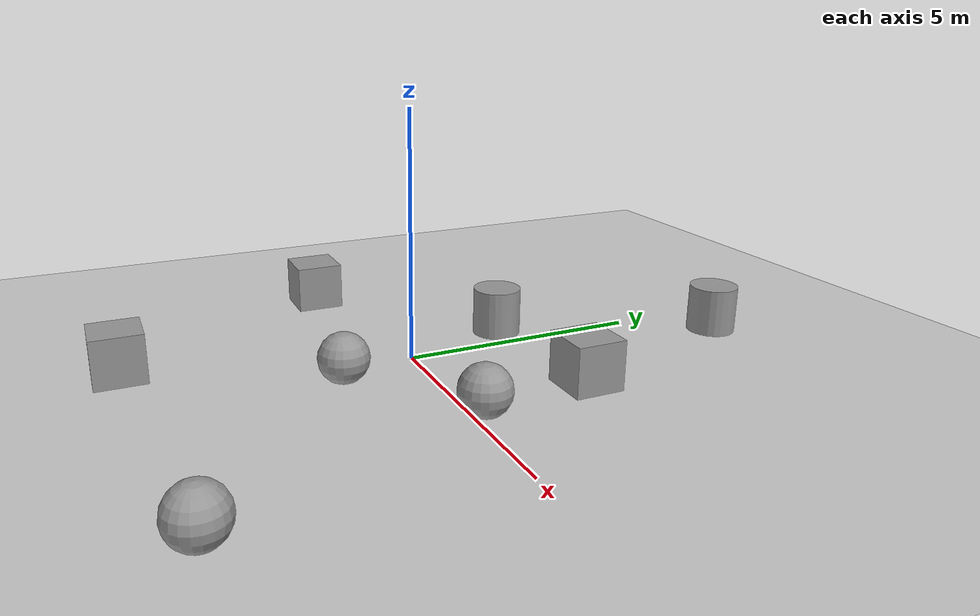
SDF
<sdf version="1.7">
 <world name="default">
  <light name="sun" type="directional">
   <pose>0 0 10 0 -0 0</pose>
   <diffuse>0.8 0.8 0.8 1</diffuse>
   <specular>0.2 0.2 0.2 1</specular>
   <attenuation>
    <range>1000</range>
    <constant>0.9</constant>
    <linear>0.01</linear>
    <quadratic>0.001</quadratic>
   </attenuation>
   <direction>-0.5 0.1 -0.9</direction>
   <spot><inner_angle>0</inner_angle><outer_angle>0</outer_angle><falloff>0</falloff></spot>
  </light>
  <model name="ground_plane">
   <static>1</static>
   <link name="link">
    <collision name="collision">
     <geometry><plane><normal>0 0 1</normal><size>100 100</size></plane></geometry>
     <surface>
      <contact><collide_bitmask>65535</collide_bitmask></contact>
      <friction><ode><mu>100</mu><mu2>50</mu2></ode></friction>
     </surface>
    </collision>
    <visual name="visual">
     <cast_shadows>0</cast_shadows>
     <geometry><plane><normal>0 0 1</normal><size>100 100</size></plane></geometry>
     <material>
      <script><uri>file://media/materials/scripts/gazebo.material</uri><name>Gazebo/Grey</name></script>
     </material>
    </visual>
   </link>
  </model>
  <gravity>0 0 -9.8</gravity>
  <magnetic_field>6e-06 2.3e-05 -4.2e-05</magnetic_field>
  <atmosphere type="adiabatic"/>
  <physics type="ode">
   <max_step_size>0.001</max_step_size>
   <real_time_factor>1</real_time_factor>
   <real_time_update_rate>1000</real_time_update_rate>
  </physics>
  <scene><ambient>0.4 0.4 0.4 1</ambient><background>0.7 0.7 0.7 1</background><shadows>1</shadows></scene>
  <audio><device>default</device></audio>
  <spherical_coordinates>
   <surface_model>EARTH_WGS84</surface_model>
   <latitude_deg>0</latitude_deg>
   <longitude_deg>0</longitude_deg>
   <elevation>0</elevation>
   <heading_deg>0</heading_deg>
  </spherical_coordinates>
  <model name="unit_box">
   <pose>2.47993 2.51124 0.5 -0 -0 -0</pose>
   <link name="link">
    <inertial>
     <mass>1</mass>
     <inertia>
      <ixx>0.166667</ixx>
      <ixy>0</ixy>
      <ixz>0</ixz>
      <iyy>0.166667</iyy>
      <iyz>0</iyz>
      <izz>0.166667</izz>
     </inertia>
    </inertial>
    <collision name="collision"><geometry><box><size>1 1 1</size></box></geometry></collision>
    <visual name="visual">
     <geometry><box><size>1 1 1</size></box></geometry>
     <material>
      <script><name>Gazebo/Grey</name><uri>file://media/materials/scripts/gazebo.material</uri></script>
     </material>
    </visual>
   </link>
  </model>
  <model name="unit_sphere">
   <pose>0.573032 -1.59746 0.5 0 -0 0</pose>
   <link name="link">
    <inertial>
     <sdf version="1.7">
      <world name="default">
       <light name="sun" type="directional">
        <pose>0 0 10 0 -0 0</pose>
        <diffuse>0.8 0.8 0.8 1</diffuse>
        <specular>0.2 0.2 0.2 1</specular>
        <attenuation>
         <range>1000</range>
         <constant>0.9</constant>
         <linear>0.01</linear>
         <quadratic>0.001</quadratic>
        </attenuation>
        <direction>-0.5 0.1 -0.9</direction>
        <spot><inner_angle>0</inner_angle><outer_angle>0</outer_angle><falloff>0</falloff></spot>
       </light>
       <model name="ground_plane">
        <static>1</static>
        <link name="link">
         <collision name="collision">
          <geometry><plane><normal>0 0 1</normal><size>100 100</size></plane></geometry>
          <surface>
           <contact><collide_bitmask>65535</collide_bitmask></contact>
           <friction><ode><mu>100</mu><mu2>50</mu2></ode></friction>
          </surface>
         </collision>
         <visual name="visual">
          <cast_shadows>0</cast_shadows>
          <geometry><plane><normal>0 0 1</normal><size>100 100</size></plane></geometry>
          <material>
           <script><uri>file://media/materials/scripts/gazebo.material</uri><name>Gazebo/Grey</name></script>
          </material>
         </visual>
        </link>
       </model>
       <gravity>0 0 -9.8</gravity>
       <magnetic_field>6e-06 2.3e-05 -4.2e-05</magnetic_field>
       <atmosphere type="adiabatic"/>
       <physics type="ode">
        <max_step_size>0.001</max_step_size>
        <real_time_factor>1</real_time_factor>
        <real_time_update_rate>1000</real_time_update_rate>
       </physics>
       <scene><ambient>0.4 0.4 0.4 1</ambient><background>0.7 0.7 0.7 1</background><shadows>1</shadows></scene>
       <spherical_coordinates>
        <surface_model>EARTH_WGS84</surface_model>
        <latitude_deg>0</latitude_deg>
        <longitude_deg>0</longitude_deg>
        <elevation>0</elevation>
        <heading_deg>0</heading_deg>
       </spherical_coordinates>
       <model name="Construction Barrel">
        <link name="link">
         <inertial>
          <pose>0 0 0.4 0 -0 0</pose>
          <mass>500</mass>
          <inertia><ixx>51.2096</ixx><iyy>51.2096</iyy><izz>25</izz><ixy>0</ixy><ixz>0</ixz><iyz>0</iyz></inertia>
         </inertial>
         <collision name="collision">
          <geometry><mesh><uri>model://construction_barrel/meshes/construction_barrel.dae</uri></mesh></geometry>
         </collision>
         <visual name="visual">
          <geometry><mesh><uri>model://construction_barrel/meshes/construction_barrel.dae</uri></mesh></geometry>
         </visual>
        </link>
        <pose>-0.756237 1.39226 0 0 -0 0</pose>
       </model>
       <model name="Construction Barrel_0">
        <link name="link">
         <inertial>
          <pose>0 0 0.4 0 -0 0</pose>
          <mass>500</mass>
          <inertia><ixx>51.2096</ixx><iyy>51.2096</iyy><izz>25</izz><ixy>0</ixy><ixz>0</ixz><iyz>0</iyz></inertia>
         </inertial>
         <collision name="collision">
          <geometry><mesh><uri>model://construction_barrel/meshes/construction_barrel.dae</uri></mesh></geometry>
         </collision>
         <visual name="visual">
          <geometry><mesh><uri>model://construction_barrel/meshes/construction_barrel.dae</uri></mesh></geometry>
         </visual>
        </link>
        <pose>1.80022 0.377178 0 0 -0 0</pose>
       </model>
       <model name="Construction Cone">
        <link name="link">
         <collision name="collision">
          <geometry>
           <mesh><scale>10 10 10</scale><uri>model://construction_cone/meshes/construction_cone.dae</uri></mesh>
          </geometry>
         </collision>
         <visual name="visual">
          <geometry>
           <mesh><scale>10 10 10</scale><uri>model://construction_cone/meshes/construction_cone.dae</uri></mesh>
          </geometry>
         </visual>
         <inertial>
          <inertia><ixx>1</ixx><ixy>0</ixy><ixz>0</ixz><iyy>1</iyy><iyz>0</iyz><izz>1</izz></inertia>
          <mass>1</mass>
         </inertial>
        </link>
        <pose>-2.19745 -2.25046 0 0 -0 0</pose>
       </model>
       <model name="Construction Cone_0">
        <link name="link">
         <collision name="collision">
          <geometry>
           <mesh><scale>10 10 10</scale><uri>model://construction_cone/meshes/construction_cone.dae</uri></mesh>
          </geometry>
         </collision>
         <visual name="visual">
          <geometry>
           <mesh><scale>10 10 10</scale><uri>model://construction_cone/meshes/construction_cone.dae</uri></mesh>
          </geometry>
         </visual>
         <inertial>
          <inertia><ixx>1</ixx><ixy>0</ixy><ixz>0</ixz><iyy>1</iyy><iyz>0</iyz><izz>1</izz></inertia>
          <mass>1</mass>
         </inertial>
        </link>
        <pose>-1.40494 -2.55135 0 0 -0 0</pose>
       </model>
       <model name="Construction Cone_1">
        <link name="link">
         <collision name="collision">
          <geometry>
           <mesh><scale>10 10 10</scale><uri>model://construction_cone/meshes/construction_cone.dae</uri></mesh>
          </geometry>
         </collision>
         <visual name="visual">
          <geometry>
           <mesh><scale>10 10 10</scale><uri>model://construction_cone/meshes/construction_cone.dae</uri></mesh>
          </geometry>
         </visual>
         <inertial>
          <inertia><ixx>1</ixx><ixy>0</ixy><ixz>0</ixz><iyy>1</iyy><iyz>0</iyz><izz>1</izz></inertia>
          <mass>1</mass>
         </inertial>
        </link>
        <pose>-0.501986 -2.9745 0 0 -0 0</pose>
       </model>
       <model name="Construction Cone_2">
        <link name="link">
         <collision name="collision">
          <geometry>
           <mesh><scale>10 10 10</scale><uri>model://construction_cone/meshes/construction_cone.dae</uri></mesh>
          </geometry>
         </collision>
         <visual name="visual">
          <geometry>
           <mesh><scale>10 10 10</scale><uri>model://construction_cone/meshes/construction_cone.dae</uri></mesh>
          </geometry>
         </visual>
         <inertial>
          <inertia><ixx>1</ixx><ixy>0</ixy><ixz>0</ixz><iyy>1</iyy><iyz>0</iyz><izz>1</izz></inertia>
          <mass>1</mass>
         </inertial>
        </link>
        <pose>2.09724 -2.18232 0 0 -0 0</pose>
       </model>
       <model name="Construction Cone_3">
        <link name="link">
         <collision name="collision">
          <geometry>
           <mesh><scale>10 10 10</scale><uri>model://construction_cone/meshes/construction_cone.dae</uri></mesh>
          </geometry>
         </collision>
         <visual name="visual">
          <geometry>
           <mesh><scale>10 10 10</scale><uri>model://construction_cone/meshes/construction_cone.dae</uri></mesh>
          </geometry>
         </visual>
         <inertial>
          <inertia><ixx>1</ixx><ixy>0</ixy><ixz>0</ixz><iyy>1</iyy><iyz>0</iyz><izz>1</izz></inertia>
          <mass>1</mass>
         </inertial>
        </link>
        <pose>-3.69879 0.345038 0 0 -0 0</pose>
       </model>
       <model name="Construction Cone_4">
        <link name="link">
         <collision name="collision">
          <geometry>
           <mesh><scale>10 10 10</scale><uri>model://construction_cone/meshes/construction_cone.dae</uri></mesh>
          </geometry>
         </collision>
         <visual name="visual">
          <geometry>
           <mesh><scale>10 10 10</scale><uri>model://construction_cone/meshes/construction_cone.dae</uri></mesh>
          </geometry>
         </visual>
         <inertial>
          <inertia><ixx>1</ixx><ixy>0</ixy><ixz>0</ixz><iyy>1</iyy><iyz>0</iyz><izz>1</izz></inertia>
          <mass>1</mass>
         </inertial>
        </link>
        <pose>-0.406438 -4.23374 0 0 -0 0</pose>
       </model>
       <model name="Construction Cone_5">
        <link name="link">
         <collision name="collision">
          <geometry>
           <mesh><scale>10 10 10</scale><uri>model://construction_cone/meshes/construction_cone.dae</uri></mesh>
          </geometry>
         </collision>
         <visual name="visual">
          <geometry>
           <mesh><scale>10 10 10</scale><uri>model://construction_cone/meshes/construction_cone.dae</uri></mesh>
          </geometry>
         </visual>
         <inertial>
          <inertia><ixx>1</ixx><ixy>0</ixy><ixz>0</ixz><iyy>1</iyy><iyz>0</iyz><izz>1</izz></inertia>
          <mass>1</mass>
         </inertial>
        </link>
        <pose>2.38815 -3.2576 0 0 -0 0</pose>
       </model>
       <model name="Construction Cone_6">
        <link name="link">
         <collision name="collision">
          <geometry>
           <mesh><scale>10 10 10</scale><uri>model://construction_cone/meshes/construction_cone.dae</uri></mesh>
          </geometry>
         </collision>
         <visual name="visual">
          <geometry>
           <mesh><scale>10 10 10</scale><uri>model://construction_cone/meshes/construction_cone.dae</uri></mesh>
          </geometry>
         </visual>
         <inertial>
          <inertia><ixx>1</ixx><ixy>0</ixy><ixz>0</ixz><iyy>1</iyy><iyz>0</iyz><izz>1</izz></inertia>
          <mass>1</mass>
         </inertial>
        </link>
        <pose>2.39316 -4.49605 0 0 -0 0</pose>
       </model>
       <model name="Construction Cone_7">
        <link name="link">
         <collision name="collision">
          <geometry>
           <mesh><scale>10 10 10</scale><uri>model://construction_cone/meshes/construction_cone.dae</uri></mesh>
          </geometry>
         </collision>
         <visual name="visual">
          <geometry>
           <mesh><scale>10 10 10</scale><uri>model://construction_cone/meshes/construction_cone.dae</uri></mesh>
          </geometry>
         </visual>
         <inertial>
          <inertia><ixx>1</ixx><ixy>0</ixy><ixz>0</ixz><iyy>1</iyy><iyz>0</iyz><izz>1</izz></inertia>
          <mass>1</mass>
         </inertial>
        </link>
        <pose>-3.00495 -2.78053 0 0 -0 0</pose>
       </model>
       <model name="Construction Cone_8">
        <link name="link">
         <collision name="collision">
          <geometry>
           <mesh><scale>10 10 10</scale><uri>model://construction_cone/meshes/construction_cone.dae</uri></mesh>
          </geometry>
         </collision>
         <visual name="visual">
          <geometry>
           <mesh><scale>10 10 10</scale><uri>model://construction_cone/meshes/construction_cone.dae</uri></mesh>
          </geometry>
         </visual>
         <inertial>
          <inertia><ixx>1</ixx><ixy>0</ixy><ixz>0</ixz><iyy>1</iyy><iyz>0</iyz><izz>1</izz></inertia>
          <mass>1</mass>
         </inertial>
        </link>
        <pose>-4.64786 -0.646522 0 0 -0 0</pose>
       </model>
       <model name="Construction Barrel_1">
        <link name="link">
         <inertial>
          <pose>0 0 0.4 0 -0 0</pose>
          <mass>500</mass>
          <inertia><ixx>51.2096</ixx><iyy>51.2096</iyy><izz>25</izz><ixy>0</ixy><ixz>0</ixz><iyz>0</iyz></inertia>
         </inertial>
         <collision name="collision">
          <geometry><mesh><uri>model://construction_barrel/meshes/construction_barrel.dae</uri></mesh></geometry>
         </collision>
         <visual name="visual">
          <geometry><mesh><uri>model://construction_barrel/meshes/construction_barrel.dae</uri></mesh></geometry>
         </visual>
        </link>
        <pose>-5.3108 -2.23708 0 0 -0 0</pose>
       </model>
       <model name="Construction Barrel_2">
        <link name="link">
         <inertial>
          <pose>0 0 0.4 0 -0 0</pose>
          <mass>500</mass>
          <inertia><ixx>51.2096</ixx><iyy>51.2096</iyy><izz>25</izz><ixy>0</ixy><ixz>0</ixz><iyz>0</iyz></inertia>
         </inertial>
         <collision name="collision">
          <geometry><mesh><uri>model://construction_barrel/meshes/construction_barrel.dae</uri></mesh></geometry>
         </collision>
         <visual name="visual">
          <geometry><mesh><uri>model://construction_barrel/meshes/construction_barrel.dae</uri></mesh></geometry>
         </visual>
        </link>
        <pose>-2.07692 -4.26198 0 0 -0 0</pose>
       </model>
       <state world_name="default">
        <sim_time>457 444000000</sim_time>
        <real_time>459 829915274</real_time>
        <wall_time>1646216792 728719362</wall_time>
        <iterations>457444</iterations>
        <model name="Construction Barrel">
         <pose>-0.756319 1.39223 0 0 0 -2.4e-05</pose>
         <scale>1 1 1</scale>
         <link name="link">
          <pose>-0.756319 1.39223 0 0 0 -2.4e-05</pose>
          <velocity>0 0 0 0 -0 0</velocity>
          <acceleration>3.45865 5.7443 4.40608 1.34644 0.778762 3.14097</acceleration>
          <wrench>1729.32 2872.15 2203.04 0 -0 0</wrench>
         </link>
        </model>
        <model name="Construction Barrel_0">
         <pose>1.80014 0.377148 0 0 0 -2.2e-05</pose>
         <scale>1 1 1</scale>
         <link name="link">
          <pose>1.80014 0.377148 0 0 0 -2.2e-05</pose>
          <velocity>0 0 0 0 -0 0</velocity>
          <acceleration>3.45864 5.7443 4.40608 1.34642 0.778778 3.14097</acceleration>
          <wrench>1729.32 2872.15 2203.04 0 -0 0</wrench>
         </link>
        </model>
        <model name="Construction Barrel_1">
         <pose>-5.31082 -2.23709 -0 0 -0 -7e-06</pose>
         <scale>1 1 1</scale>
         <link name="link">
          <pose>-5.31082 -2.23709 -0 0 -0 -7e-06</pose>
          <velocity>0 0 0 0 -0 0</velocity>
          <acceleration>-3.87743 -2.8936 0.727843 -2.17783 0.268134 -3.13538</acceleration>
          <wrench>-1938.71 -1446.8 363.922 0 -0 0</wrench>
         </link>
        </model>
        <model name="Construction Barrel_2">
         <pose>-2.07693 -4.26199 -0 0 0 -4e-06</pose>
         <scale>1 1 1</scale>
         <link name="link">
          <pose>-2.07693 -4.26199 -0 0 0 -4e-06</pose>
          <velocity>0 0 0 0 -0 0</velocity>
          <acceleration>7.60795 0.965639 1.20183 -2.41278 0.170207 0.001195</acceleration>
          <wrench>3803.98 482.819 600.916 0 -0 0</wrench>
         </link>
        </model>
        <model name="Construction Cone">
         <pose>-2.19745 -2.25046 -0 0 -0 0</pose>
         <scale>1 1 1</scale>
         <link name="link">
          <pose>-2.19745 -2.25046 -0 0 -0 0</pose>
          <velocity>0 0 0 0 -0 0</velocity>
          <acceleration>0 -0 -0.008512 -2.58585 1.13682 3.14159</acceleration>
          <wrench>0 -0 -0.008512 0 -0 0</wrench>
         </link>
        </model>
        <model name="Construction Cone_0">
         <pose>-1.40494 -2.55135 -0 0 -0 0</pose>
         <scale>1 1 1</scale>
         <link name="link">
          <pose>-1.40494 -2.55135 -0 0 -0 0</pose>
          <velocity>0 0 0 0 -0 0</velocity>
          <acceleration>0 -0 -0.008512 -2.58585 1.13682 3.14159</acceleration>
          <wrench>0 -0 -0.008512 0 -0 0</wrench>
         </link>
        </model>
        <model name="Construction Cone_1">
         <pose>-0.501986 -2.9745 -0 0 -0 0</pose>
         <scale>1 1 1</scale>
         <link name="link">
          <pose>-0.501986 -2.9745 -0 0 -0 0</pose>
          <velocity>0 0 0 0 -0 0</velocity>
          <acceleration>0 -0 -0.008512 -2.58585 1.13682 3.14159</acceleration>
          <wrench>0 -0 -0.008512 0 -0 0</wrench>
         </link>
        </model>
        <model name="Construction Cone_2">
         <pose>2.09724 -2.18232 -0 1e-06 -0 0</pose>
         <scale>1 1 1</scale>
         <link name="link">
          <pose>2.09724 -2.18232 -0 1e-06 -0 0</pose>
          <velocity>0 0 0 0 -0 0</velocity>
          <acceleration>-0 -0 -9.79988 3e-05 2e-05 -0</acceleration>
          <wrench>-0 -0 -9.79988 0 -0 0</wrench>
         </link>
        </model>
        <model name="Construction Cone_3">
         <pose>-3.69879 0.345038 -1e-05 0 -0 0</pose>
         <scale>1 1 1</scale>
         <link name="link">
          <pose>-3.69879 0.345038 -1e-05 0 -0 0</pose>
          <velocity>0 0 0 0 -0 0</velocity>
          <acceleration>0 0 -9.8 0 -0 0</acceleration>
          <wrench>0 0 -9.8 0 -0 0</wrench>
         </link>
        </model>
        <model name="Construction Cone_4">
         <pose>-0.406438 -4.23374 -0 0 -1e-06 0</pose>
         <scale>1 1 1</scale>
         <link name="link">
          <pose>-0.406438 -4.23374 -0 0 -1e-06 0</pose>
          <velocity>0 0 0 0 -0 0</velocity>
          <acceleration>-0 0 0.008512 2.58585 -1.13682 -3.14159</acceleration>
          <wrench>-0 0 0.008512 0 -0 0</wrench>
         </link>
        </model>
        <model name="Construction Cone_5">
         <pose>2.38815 -3.2576 -0 0 -0 0</pose>
         <scale>1 1 1</scale>
         <link name="link">
          <pose>2.38815 -3.2576 -0 0 -0 0</pose>
          <velocity>0 0 0 0 -0 0</velocity>
          <acceleration>0 -0 -0.008512 -2.58585 1.13682 3.14159</acceleration>
          <wrench>0 -0 -0.008512 0 -0 0</wrench>
         </link>
        </model>
        <model name="Construction Cone_6">
         <pose>2.39316 -4.49605 -0 0 -1e-06 0</pose>
         <scale>1 1 1</scale>
         <link name="link">
          <pose>2.39316 -4.49605 -0 0 -1e-06 0</pose>
          <velocity>0 0 0 0 -0 0</velocity>
          <acceleration>-0 0 0.008512 2.58585 -1.13682 -3.14159</acceleration>
          <wrench>-0 0 0.008512 0 -0 0</wrench>
         </link>
        </model>
        <model name="Construction Cone_7">
         <pose>-3.00495 -2.78053 -0 0 -1e-06 0</pose>
         <scale>1 1 1</scale>
         <link name="link">
          <pose>-3.00495 -2.78053 -0 0 -1e-06 0</pose>
          <velocity>0 0 0 0 -0 0</velocity>
          <acceleration>-0 0 0.008512 2.58585 -1.13682 -3.14159</acceleration>
          <wrench>-0 0 0.008512 0 -0 0</wrench>
         </link>
        </model>
        <model name="Construction Cone_8">
         <pose>-4.64786 -0.646522 -0 0 -1e-06 0</pose>
         <scale>1 1 1</scale>
         <link name="link">
          <pose>-4.64786 -0.646522 -0 0 -1e-06 0</pose>
          <velocity>0 0 0 0 -0 0</velocity>
          <acceleration>-0 0 0.008512 2.58585 -1.13682 -3.14159</acceleration>
          <wrench>-0 0 0.008512 0 -0 0</wrench>
         </link>
        </model>
        <model name="ground_plane">
         <scale>1 1 1</scale>
         <link name="link">
          <velocity>0 0 0 0 -0 0</velocity>
          <acceleration>0 0 0 0 -0 0</acceleration>
          <wrench>0 0 0 0 -0 0</wrench>
         </link>
        </model>
        <light name="sun"><pose>0 0 10 0 -0 0</pose></light>
       </state>
       <gui fullscreen="0">
        <camera name="user_camera">
         <pose>-15.5892 0.392985 21.6628 0 0.851642 0.028194</pose>
         <view_controller>orbit</view_controller>
         <projection_type>perspective</projection_type>
        </camera>
       </gui>
      </world>
     </sdf>
     <mass>1</mass>
     <inertia><ixx>0.1</ixx><ixy>0</ixy><ixz>0</ixz><iyy>0.1</iyy><iyz>0</iyz><izz>0.1</izz></inertia>
    </inertial>
    <collision name="collision"><geometry><sphere><radius>0.5</radius></sphere></geometry></collision>
    <visual name="visual">
     <geometry><sphere><radius>0.5</radius></sphere></geometry>
     <material>
      <script><name>Gazebo/Grey</name><uri>file://media/materials/scripts/gazebo.material</uri></script>
     </material>
    </visual>
   </link>
  </model>
  <model name="unit_sphere_0">
   <pose>2.88768 0.197508 0.5 0 -0 0</pose>
   <link name="link">
    <inertial>
     <mass>1</mass>
     <inertia><ixx>0.1</ixx><ixy>0</ixy><ixz>0</ixz><iyy>0.1</iyy><iyz>0</iyz><izz>0.1</izz></inertia>
    </inertial>
    <collision name="collision"><geometry><sphere><radius>0.5</radius></sphere></geometry></collision>
    <visual name="visual">
     <geometry><sphere><radius>0.5</radius></sphere></geometry>
     <material>
      <script><name>Gazebo/Grey</name><uri>file://media/materials/scripts/gazebo.material</uri></script>
     </material>
    </visual>
   </link>
  </model>
  <model name="unit_cylinder">
   <pose>-0.627789 2.23138 0.499998 4e-06 -4e-06 0</pose>
   <link name="link">
    <inertial>
     <mass>1</mass>
     <inertia><ixx>0.145833</ixx><ixy>0</ixy><ixz>0</ixz><iyy>0.145833</iyy><iyz>0</iyz><izz>0.125</izz></inertia>
    </inertial>
    <collision name="collision">
     <geometry><cylinder><radius>0.5</radius><length>1</length></cylinder></geometry>
    </collision>
    <visual name="visual">
     <geometry><cylinder><radius>0.5</radius><length>1</length></cylinder></geometry>
     <material>
      <script><name>Gazebo/Grey</name><uri>file://media/materials/scripts/gazebo.material</uri></script>
     </material>
    </visual>
   </link>
  </model>
  <model name="unit_box_0">
   <pose>-4.01737 -0.844754 0.5 -0 -0 -0</pose>
   <link name="link">
    <inertial>
     <mass>1</mass>
     <inertia>
      <ixx>0.166667</ixx>
      <ixy>0</ixy>
      <ixz>0</ixz>
      <iyy>0.166667</iyy>
      <iyz>0</iyz>
      <izz>0.166667</izz>
     </inertia>
    </inertial>
    <collision name="collision"><geometry><box><size>1 1 1</size></box></geometry></collision>
    <visual name="visual">
     <geometry><box><size>1 1 1</size></box></geometry>
     <material>
      <script><name>Gazebo/Grey</name><uri>file://media/materials/scripts/gazebo.material</uri></script>
     </material>
    </visual>
   </link>
  </model>
  <model name="unit_box_1">
   <pose>-1.32994 -5.47575 0.5 0 -0 0</pose>
   <link name="link">
    <inertial>
     <mass>1</mass>
     <inertia>
      <ixx>0.166667</ixx>
      <ixy>0</ixy>
      <ixz>0</ixz>
      <iyy>0.166667</iyy>
      <iyz>0</iyz>
      <izz>0.166667</izz>
     </inertia>
    </inertial>
    <collision name="collision"><geometry><box><size>1 1 1</size></box></geometry></collision>
    <visual name="visual">
     <geometry><box><size>1 1 1</size></box></geometry>
     <material>
      <script><name>Gazebo/Grey</name><uri>file://media/materials/scripts/gazebo.material</uri></script>
     </material>
    </visual>
   </link>
  </model>
  <model name="unit_cylinder_0">
   <pose>1.09163 6.60217 0.499997 3e-06 4e-06 -0</pose>
   <link name="link">
    <inertial>
     <mass>1</mass>
     <inertia><ixx>0.145833</ixx><ixy>0</ixy><ixz>0</ixz><iyy>0.145833</iyy><iyz>0</iyz><izz>0.125</izz></inertia>
    </inertial>
    <collision name="collision">
     <geometry><cylinder><radius>0.5</radius><length>1</length></cylinder></geometry>
    </collision>
    <visual name="visual">
     <geometry><cylinder><radius>0.5</radius><length>1</length></cylinder></geometry>
     <material>
      <script><name>Gazebo/Grey</name><uri>file://media/materials/scripts/gazebo.material</uri></script>
     </material>
    </visual>
   </link>
  </model>
  <model name="unit_sphere_1">
   <pose>4.74859 -4.93577 0.5 0 -0 0</pose>
   <link name="link">
    <inertial>
     <mass>1</mass>
     <inertia><ixx>0.1</ixx><ixy>0</ixy><ixz>0</ixz><iyy>0.1</iyy><iyz>0</iyz><izz>0.1</izz></inertia>
    </inertial>
    <collision name="collision"><geometry><sphere><radius>0.5</radius></sphere></geometry></collision>
    <visual name="visual">
     <geometry><sphere><radius>0.5</radius></sphere></geometry>
     <material>
      <script><name>Gazebo/Grey</name><uri>file://media/materials/scripts/gazebo.material</uri></script>
     </material>
    </visual>
   </link>
  </model>
 </world>
</sdf>
